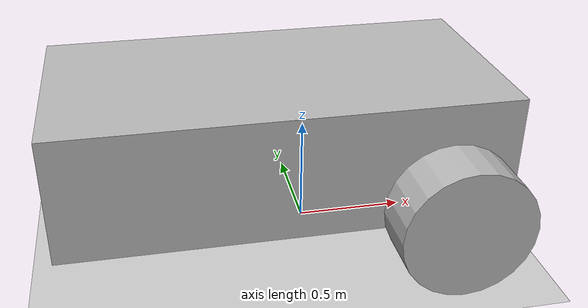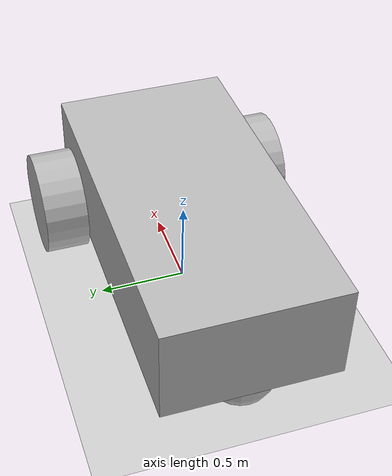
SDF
<sdf version="1.7">
 <world name="default">
  <plugin name="hello_world" filename="libhello_world.dylib"/>
  <light name="sun" type="directional">
   <pose>0 0 10 0 -0 0</pose>
   <diffuse>0.8 0.8 0.8 1</diffuse>
   <specular>0.2 0.2 0.2 1</specular>
   <attenuation>
    <range>1000</range>
    <constant>0.9</constant>
    <linear>0.01</linear>
    <quadratic>0.001</quadratic>
   </attenuation>
   <direction>-0.5 0.1 -0.9</direction>
   <spot><inner_angle>0</inner_angle><outer_angle>0</outer_angle><falloff>0</falloff></spot>
  </light>
  <model name="ground_plane">
   <static>1</static>
   <link name="link">
    <collision name="collision">
     <geometry><plane><normal>0 0 1</normal><size>100 100</size></plane></geometry>
     <surface>
      <contact><collide_bitmask>65535</collide_bitmask></contact>
      <friction><ode><mu>100</mu><mu2>50</mu2></ode></friction>
     </surface>
    </collision>
    <visual name="visual">
     <cast_shadows>0</cast_shadows>
     <geometry><plane><normal>0 0 1</normal><size>100 100</size></plane></geometry>
    </visual>
   </link>
  </model>
  <gravity>0 0 -9.8</gravity>
  <magnetic_field>6e-06 2.3e-05 -4.2e-05</magnetic_field>
  <atmosphere type="adiabatic"/>
  <physics type="ode">
   <max_step_size>0.001</max_step_size>
   <real_time_factor>1</real_time_factor>
   <real_time_update_rate>1000</real_time_update_rate>
  </physics>
  <scene><ambient>0.4 0.4 0.4 1</ambient><background>0.7 0.7 0.7 1</background><shadows>1</shadows></scene>
  <audio><device>default</device></audio>
  <spherical_coordinates>
   <surface_model>EARTH_WGS84</surface_model>
   <latitude_deg>0</latitude_deg>
   <longitude_deg>0</longitude_deg>
   <elevation>0</elevation>
   <heading_deg>0</heading_deg>
  </spherical_coordinates>
  <model name="robot">
   <plugin name="diff_drive" filename="libdiff_drive.dylib"/>
   <pose>0 0 0.325 0 -0 0</pose>
   <link name="chassis">
    <pose>-0.151427 -0 0.175 0 -0 0</pose>
    <inertial>
     <mass>1.14395</mass>
     <inertia>
      <ixx>0.126164</ixx>
      <ixy>0</ixy>
      <ixz>0</ixz>
      <iyy>0.416519</iyy>
      <iyz>0</iyz>
      <izz>0.481014</izz>
     </inertia>
    </inertial>
    <visual name="visual"><geometry><box><size>2.01142 1 0.568726</size></box></geometry></visual>
    <collision name="collision">
     <geometry><box><size>2.01142 1 0.568726</size></box></geometry>
     <surface>
      <friction><ode><mu>1</mu><mu2>1</mu2><fdir1>0 0 0</fdir1><slip1>0</slip1><slip2>0</slip2></ode></friction>
      <bounce><restitution_coefficient>0</restitution_coefficient><threshold>1e+06</threshold></bounce>
      <contact>
       <collide_without_contact>0</collide_without_contact>
       <collide_without_contact_bitmask>1</collide_without_contact_bitmask>
       <collide_bitmask>1</collide_bitmask>
       <ode>
        <soft_cfm>0</soft_cfm>
        <soft_erp>0.2</soft_erp>
        <kp>1e+13</kp>
        <kd>1</kd>
        <max_vel>0.01</max_vel>
        <min_depth>0</min_depth>
       </ode>
      </contact>
     </surface>
    </collision>
   </link>
   <link name="left">
    <pose>0.554283 0.625029 -0.025 1.5707 0 0</pose>
    <inertial>
     <mass>2</mass>
     <inertia><ixx>0.145833</ixx><ixy>0</ixy><ixz>0</ixz><iyy>0.145833</iyy><iyz>0</iyz><izz>0.125</izz></inertia>
    </inertial>
    <visual name="visual">
     <geometry><cylinder><radius>0.3</radius><length>0.25</length></cylinder></geometry>
    </visual>
    <collision name="collision">
     <geometry><cylinder><radius>0.3</radius><length>0.25</length></cylinder></geometry>
     <surface>
      <friction><ode><mu>1</mu><mu2>1</mu2><fdir1>0 0 0</fdir1><slip1>0</slip1><slip2>0</slip2></ode></friction>
      <bounce><restitution_coefficient>0</restitution_coefficient><threshold>1e+06</threshold></bounce>
      <contact>
       <collide_without_contact>0</collide_without_contact>
       <collide_without_contact_bitmask>1</collide_without_contact_bitmask>
       <collide_bitmask>1</collide_bitmask>
       <ode>
        <soft_cfm>0</soft_cfm>
        <soft_erp>0.2</soft_erp>
        <kp>1e+13</kp>
        <kd>1</kd>
        <max_vel>0.01</max_vel>
        <min_depth>0</min_depth>
       </ode>
      </contact>
     </surface>
    </collision>
   </link>
   <link name="right">
    <pose>0.554282 -0.625029 -0.025 1.5707 0 0</pose>
    <inertial>
     <mass>2</mass>
     <inertia><ixx>0.145833</ixx><ixy>0</ixy><ixz>0</ixz><iyy>0.145833</iyy><iyz>0</iyz><izz>0.125</izz></inertia>
    </inertial>
    <visual name="visual">
     <geometry><cylinder><radius>0.3</radius><length>0.25</length></cylinder></geometry>
    </visual>
    <collision name="collision">
     <geometry><cylinder><radius>0.3</radius><length>0.25</length></cylinder></geometry>
     <surface>
      <friction><ode><mu>1</mu><mu2>1</mu2><fdir1>0 0 0</fdir1><slip1>0</slip1><slip2>0</slip2></ode></friction>
      <bounce><restitution_coefficient>0</restitution_coefficient><threshold>1e+06</threshold></bounce>
      <contact>
       <collide_without_contact>0</collide_without_contact>
       <collide_without_contact_bitmask>1</collide_without_contact_bitmask>
       <collide_bitmask>1</collide_bitmask>
       <ode>
        <soft_cfm>0</soft_cfm>
        <soft_erp>0.2</soft_erp>
        <kp>1e+13</kp>
        <kd>1</kd>
        <max_vel>0.01</max_vel>
        <min_depth>0</min_depth>
       </ode>
      </contact>
     </surface>
    </collision>
   </link>
   <link name="caster">
    <pose>-0.957138 -0 -0.125 0 -0 0</pose>
    <inertial>
     <mass>1</mass>
     <inertia><ixx>0.1</ixx><ixy>0</ixy><ixz>0</ixz><iyy>0.1</iyy><iyz>0</iyz><izz>0.1</izz></inertia>
    </inertial>
    <visual name="visual"><geometry><sphere><radius>0.2</radius></sphere></geometry></visual>
    <collision name="collision">
     <geometry><sphere><radius>0.2</radius></sphere></geometry>
     <surface>
      <friction><ode><mu>1</mu><mu2>1</mu2><fdir1>0 0 0</fdir1><slip1>0</slip1><slip2>0</slip2></ode></friction>
      <bounce><restitution_coefficient>0</restitution_coefficient><threshold>1e+06</threshold></bounce>
      <contact>
       <collide_without_contact>0</collide_without_contact>
       <collide_without_contact_bitmask>1</collide_without_contact_bitmask>
       <collide_bitmask>1</collide_bitmask>
       <ode>
        <soft_cfm>0</soft_cfm>
        <soft_erp>0.2</soft_erp>
        <kp>1e+13</kp>
        <kd>1</kd>
        <max_vel>0.01</max_vel>
        <min_depth>0</min_depth>
       </ode>
      </contact>
     </surface>
    </collision>
   </link>
   <joint name="chassis_left_revolute" type="revolute">
    <parent>chassis</parent>
    <child>left</child>
    <axis>
     <xyz>0 0 1</xyz>
     <use_parent_model_frame>0</use_parent_model_frame>
     <limit>
      <lower>-1.79769e+308</lower>
      <upper>1.79769e+308</upper>
      <effort>-1</effort>
      <velocity>-1</velocity>
     </limit>
     <dynamics>
      <spring_reference>0</spring_reference>
      <spring_stiffness>0</spring_stiffness>
      <damping>0</damping>
      <friction>0</friction>
     </dynamics>
    </axis>
    <physics>
     <ode><limit><cfm>0</cfm><erp>0.2</erp></limit><suspension><cfm>0</cfm><erp>0.2</erp></suspension></ode>
    </physics>
   </joint>
   <joint name="chassis_right_revolute" type="revolute">
    <parent>chassis</parent>
    <child>right</child>
    <axis>
     <xyz>0 0 1</xyz>
     <use_parent_model_frame>0</use_parent_model_frame>
     <limit>
      <lower>-1.79769e+308</lower>
      <upper>1.79769e+308</upper>
      <effort>-1</effort>
      <velocity>-1</velocity>
     </limit>
     <dynamics>
      <spring_reference>0</spring_reference>
      <spring_stiffness>0</spring_stiffness>
      <damping>0</damping>
      <friction>0</friction>
     </dynamics>
    </axis>
    <physics>
     <ode><limit><cfm>0</cfm><erp>0.2</erp></limit><suspension><cfm>0</cfm><erp>0.2</erp></suspension></ode>
    </physics>
   </joint>
   <joint name="chassis_caster_ball" type="ball">
    <parent>chassis</parent>
    <child>caster</child>
    <physics>
     <ode><limit><cfm>0</cfm><erp>0.2</erp></limit><suspension><cfm>0</cfm><erp>0.2</erp></suspension></ode>
    </physics>
   </joint>
   <static>0</static>
  </model>
 </world>
</sdf>
